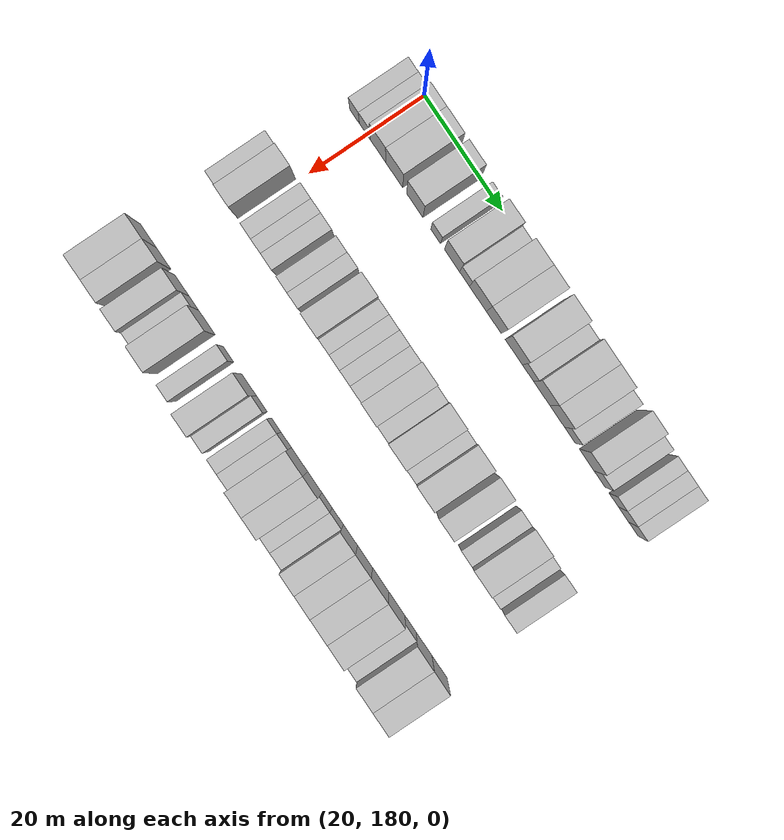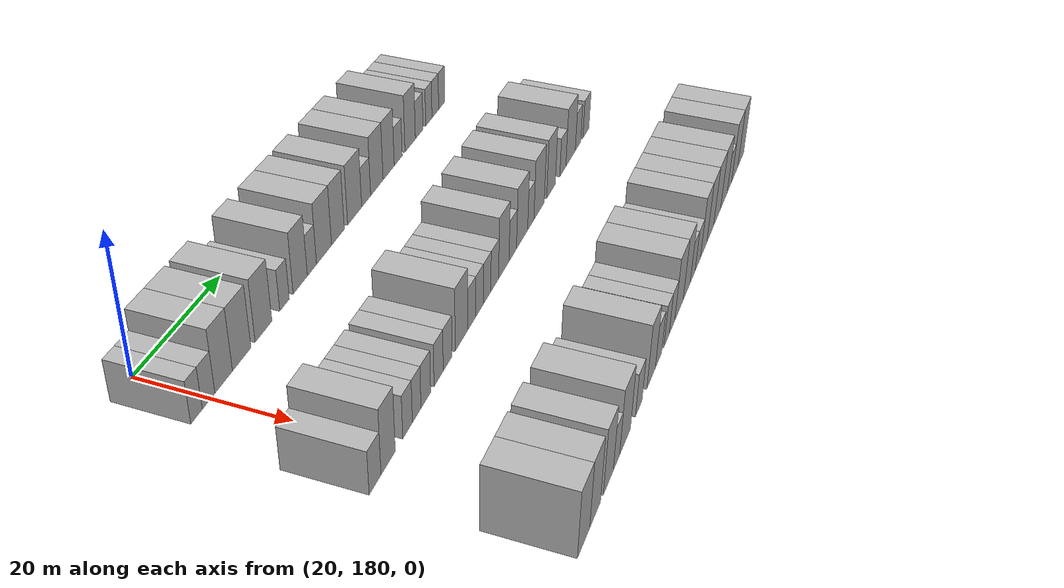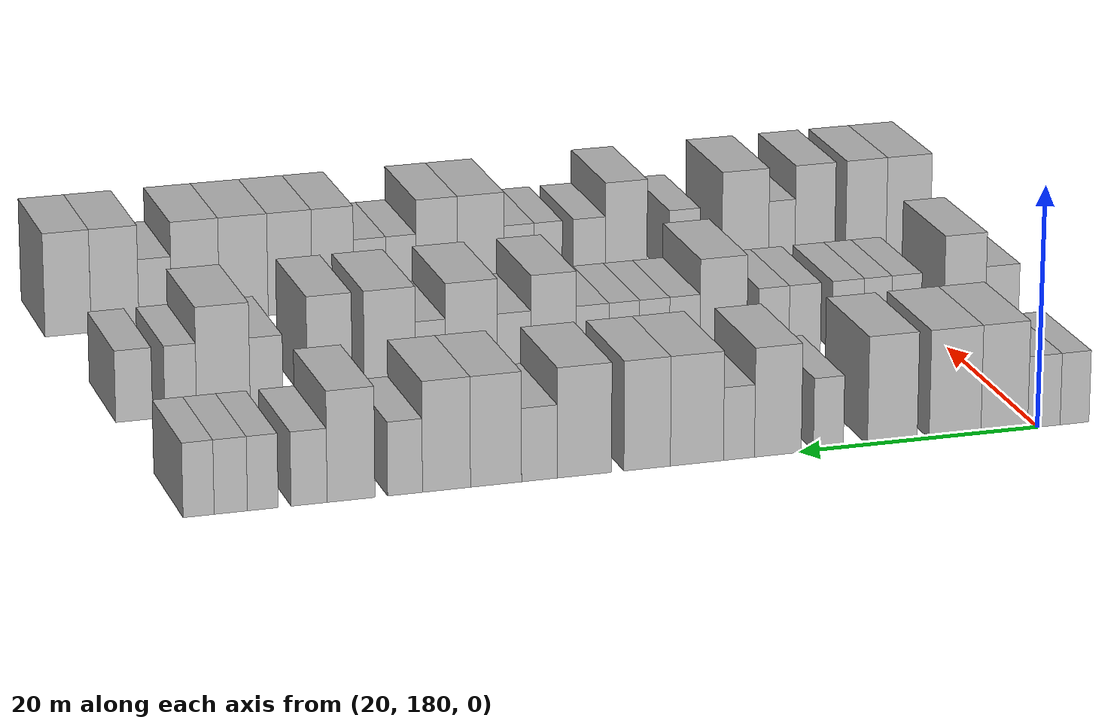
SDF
<sdf version="1.6">
 <world name="default">
  <model name="building_104">
   <static>1</static>
   <pose>25.0000 176.9085 0 0.000000 0.000000 0.000000</pose>
   <link name="link">
    <pose>0 0 3.00 0 0 0</pose>
    <collision name="collision"><geometry><box><size>10.0000 2.4607 6.0000</size></box></geometry></collision>
    <visual name="visual">
     <cast_shadows>0</cast_shadows>
     <geometry><box><size>10.0000 2.4607 6.0000</size></box></geometry>
     <material>
      <script>
       <uri>model://HANNAS_wall/materials/scripts</uri>
       <uri>model://HANNAS_wall/materials/textures</uri>
       <name>vrc/HANNAS_wall</name>
      </script>
     </material>
    </visual>
   </link>
  </model>
  <model name="building_105">
   <static>1</static>
   <pose>25.0000 179.5172 0 0.000000 0.000000 0.000000</pose>
   <link name="link">
    <pose>0 0 3.00 0 0 0</pose>
    <collision name="collision"><geometry><box><size>10.0000 2.7566 6.0000</size></box></geometry></collision>
    <visual name="visual">
     <cast_shadows>0</cast_shadows>
     <geometry><box><size>10.0000 2.7566 6.0000</size></box></geometry>
     <material>
      <script>
       <uri>model://HANNAS_wall/materials/scripts</uri>
       <uri>model://HANNAS_wall/materials/textures</uri>
       <name>vrc/HANNAS_wall</name>
      </script>
     </material>
    </visual>
   </link>
  </model>
  <model name="building_106">
   <static>1</static>
   <pose>25.0000 182.8722 0 0.000000 0.000000 0.000000</pose>
   <link name="link">
    <pose>0 0 4.50 0 0 0</pose>
    <collision name="collision"><geometry><box><size>10.0000 3.9534 9.0000</size></box></geometry></collision>
    <visual name="visual">
     <cast_shadows>0</cast_shadows>
     <geometry><box><size>10.0000 3.9534 9.0000</size></box></geometry>
     <material>
      <script>
       <uri>model://HANNAS_wall/materials/scripts</uri>
       <uri>model://HANNAS_wall/materials/textures</uri>
       <name>vrc/HANNAS_wall</name>
      </script>
     </material>
    </visual>
   </link>
  </model>
  <model name="building_107">
   <static>1</static>
   <pose>25.0000 187.0265 0 0.000000 0.000000 0.000000</pose>
   <link name="link">
    <pose>0 0 4.50 0 0 0</pose>
    <collision name="collision"><geometry><box><size>10.0000 4.3552 9.0000</size></box></geometry></collision>
    <visual name="visual">
     <cast_shadows>0</cast_shadows>
     <geometry><box><size>10.0000 4.3552 9.0000</size></box></geometry>
     <material>
      <script>
       <uri>model://HANNAS_wall/materials/scripts</uri>
       <uri>model://HANNAS_wall/materials/textures</uri>
       <name>vrc/HANNAS_wall</name>
      </script>
     </material>
    </visual>
   </link>
  </model>
  <model name="building_108">
   <static>1</static>
   <pose>25.0000 192.2827 0 0.000000 0.000000 0.000000</pose>
   <link name="link">
    <pose>0 0 4.50 0 0 0</pose>
    <collision name="collision"><geometry><box><size>10.0000 4.1572 9.0000</size></box></geometry></collision>
    <visual name="visual">
     <cast_shadows>0</cast_shadows>
     <geometry><box><size>10.0000 4.1572 9.0000</size></box></geometry>
     <material>
      <script>
       <uri>model://HANNAS_wall/materials/scripts</uri>
       <uri>model://HANNAS_wall/materials/textures</uri>
       <name>vrc/HANNAS_wall</name>
      </script>
     </material>
    </visual>
   </link>
  </model>
  <model name="building_109">
   <static>1</static>
   <pose>25.0000 197.6085 0 0.000000 0.000000 0.000000</pose>
   <link name="link">
    <pose>0 0 3.00 0 0 0</pose>
    <collision name="collision"><geometry><box><size>10.0000 2.4943 6.0000</size></box></geometry></collision>
    <visual name="visual">
     <cast_shadows>0</cast_shadows>
     <geometry><box><size>10.0000 2.4943 6.0000</size></box></geometry>
     <material>
      <script>
       <uri>model://HANNAS_wall/materials/scripts</uri>
       <uri>model://HANNAS_wall/materials/textures</uri>
       <name>vrc/HANNAS_wall</name>
      </script>
     </material>
    </visual>
   </link>
  </model>
  <model name="building_110">
   <static>1</static>
   <pose>25.0000 201.7870 0 0.000000 0.000000 0.000000</pose>
   <link name="link">
    <pose>0 0 4.50 0 0 0</pose>
    <collision name="collision"><geometry><box><size>10.0000 3.8627 9.0000</size></box></geometry></collision>
    <visual name="visual">
     <cast_shadows>0</cast_shadows>
     <geometry><box><size>10.0000 3.8627 9.0000</size></box></geometry>
     <material>
      <script>
       <uri>model://HANNAS_wall/materials/scripts</uri>
       <uri>model://HANNAS_wall/materials/textures</uri>
       <name>vrc/HANNAS_wall</name>
      </script>
     </material>
    </visual>
   </link>
  </model>
  <model name="building_111">
   <static>1</static>
   <pose>25.0000 204.9935 0 0.000000 0.000000 0.000000</pose>
   <link name="link">
    <pose>0 0 3.00 0 0 0</pose>
    <collision name="collision"><geometry><box><size>10.0000 2.5503 6.0000</size></box></geometry></collision>
    <visual name="visual">
     <cast_shadows>0</cast_shadows>
     <geometry><box><size>10.0000 2.5503 6.0000</size></box></geometry>
     <material>
      <script>
       <uri>model://HANNAS_wall/materials/scripts</uri>
       <uri>model://HANNAS_wall/materials/textures</uri>
       <name>vrc/HANNAS_wall</name>
      </script>
     </material>
    </visual>
   </link>
  </model>
  <model name="building_112">
   <static>1</static>
   <pose>25.0000 208.4336 0 0.000000 0.000000 0.000000</pose>
   <link name="link">
    <pose>0 0 4.50 0 0 0</pose>
    <collision name="collision"><geometry><box><size>10.0000 4.3299 9.0000</size></box></geometry></collision>
    <visual name="visual">
     <cast_shadows>0</cast_shadows>
     <geometry><box><size>10.0000 4.3299 9.0000</size></box></geometry>
     <material>
      <script>
       <uri>model://HANNAS_wall/materials/scripts</uri>
       <uri>model://HANNAS_wall/materials/textures</uri>
       <name>vrc/HANNAS_wall</name>
      </script>
     </material>
    </visual>
   </link>
  </model>
  <model name="building_113">
   <static>1</static>
   <pose>25.0000 212.4902 0 0.000000 0.000000 0.000000</pose>
   <link name="link">
    <pose>0 0 4.50 0 0 0</pose>
    <collision name="collision"><geometry><box><size>10.0000 3.7833 9.0000</size></box></geometry></collision>
    <visual name="visual">
     <cast_shadows>0</cast_shadows>
     <geometry><box><size>10.0000 3.7833 9.0000</size></box></geometry>
     <material>
      <script>
       <uri>model://HANNAS_wall/materials/scripts</uri>
       <uri>model://HANNAS_wall/materials/textures</uri>
       <name>vrc/HANNAS_wall</name>
      </script>
     </material>
    </visual>
   </link>
  </model>
  <model name="building_114">
   <static>1</static>
   <pose>25.0000 217.5738 0 0.000000 0.000000 0.000000</pose>
   <link name="link">
    <pose>0 0 4.50 0 0 0</pose>
    <collision name="collision"><geometry><box><size>10.0000 4.3839 9.0000</size></box></geometry></collision>
    <visual name="visual">
     <cast_shadows>0</cast_shadows>
     <geometry><box><size>10.0000 4.3839 9.0000</size></box></geometry>
     <material>
      <script>
       <uri>model://HANNAS_wall/materials/scripts</uri>
       <uri>model://HANNAS_wall/materials/textures</uri>
       <name>vrc/HANNAS_wall</name>
      </script>
     </material>
    </visual>
   </link>
  </model>
  <model name="building_115">
   <static>1</static>
   <pose>25.0000 221.1995 0 0.000000 0.000000 0.000000</pose>
   <link name="link">
    <pose>0 0 3.00 0 0 0</pose>
    <collision name="collision"><geometry><box><size>10.0000 2.8673 6.0000</size></box></geometry></collision>
    <visual name="visual">
     <cast_shadows>0</cast_shadows>
     <geometry><box><size>10.0000 2.8673 6.0000</size></box></geometry>
     <material>
      <script>
       <uri>model://HANNAS_wall/materials/scripts</uri>
       <uri>model://HANNAS_wall/materials/textures</uri>
       <name>vrc/HANNAS_wall</name>
      </script>
     </material>
    </visual>
   </link>
  </model>
  <model name="building_116">
   <static>1</static>
   <pose>25.0000 224.6780 0 0.000000 0.000000 0.000000</pose>
   <link name="link">
    <pose>0 0 4.50 0 0 0</pose>
    <collision name="collision"><geometry><box><size>10.0000 4.0896 9.0000</size></box></geometry></collision>
    <visual name="visual">
     <cast_shadows>0</cast_shadows>
     <geometry><box><size>10.0000 4.0896 9.0000</size></box></geometry>
     <material>
      <script>
       <uri>model://HANNAS_wall/materials/scripts</uri>
       <uri>model://HANNAS_wall/materials/textures</uri>
       <name>vrc/HANNAS_wall</name>
      </script>
     </material>
    </visual>
   </link>
  </model>
  <model name="building_117">
   <static>1</static>
   <pose>25.0000 228.6338 0 0.000000 0.000000 0.000000</pose>
   <link name="link">
    <pose>0 0 4.50 0 0 0</pose>
    <collision name="collision"><geometry><box><size>10.0000 3.8220 9.0000</size></box></geometry></collision>
    <visual name="visual">
     <cast_shadows>0</cast_shadows>
     <geometry><box><size>10.0000 3.8220 9.0000</size></box></geometry>
     <material>
      <script>
       <uri>model://HANNAS_wall/materials/scripts</uri>
       <uri>model://HANNAS_wall/materials/textures</uri>
       <name>vrc/HANNAS_wall</name>
      </script>
     </material>
    </visual>
   </link>
  </model>
  <model name="building_118">
   <static>1</static>
   <pose>25.0000 231.9247 0 0.000000 0.000000 0.000000</pose>
   <link name="link">
    <pose>0 0 3.00 0 0 0</pose>
    <collision name="collision"><geometry><box><size>10.0000 2.7598 6.0000</size></box></geometry></collision>
    <visual name="visual">
     <cast_shadows>0</cast_shadows>
     <geometry><box><size>10.0000 2.7598 6.0000</size></box></geometry>
     <material>
      <script>
       <uri>model://HANNAS_wall/materials/scripts</uri>
       <uri>model://HANNAS_wall/materials/textures</uri>
       <name>vrc/HANNAS_wall</name>
      </script>
     </material>
    </visual>
   </link>
  </model>
  <model name="building_119">
   <static>1</static>
   <pose>25.0000 236.1870 0 0.000000 0.000000 0.000000</pose>
   <link name="link">
    <pose>0 0 4.50 0 0 0</pose>
    <collision name="collision"><geometry><box><size>10.0000 3.7647 9.0000</size></box></geometry></collision>
    <visual name="visual">
     <cast_shadows>0</cast_shadows>
     <geometry><box><size>10.0000 3.7647 9.0000</size></box></geometry>
     <material>
      <script>
       <uri>model://HANNAS_wall/materials/scripts</uri>
       <uri>model://HANNAS_wall/materials/textures</uri>
       <name>vrc/HANNAS_wall</name>
      </script>
     </material>
    </visual>
   </link>
  </model>
  <model name="building_120">
   <static>1</static>
   <pose>25.0000 239.4848 0 0.000000 0.000000 0.000000</pose>
   <link name="link">
    <pose>0 0 3.00 0 0 0</pose>
    <collision name="collision"><geometry><box><size>10.0000 2.8310 6.0000</size></box></geometry></collision>
    <visual name="visual">
     <cast_shadows>0</cast_shadows>
     <geometry><box><size>10.0000 2.8310 6.0000</size></box></geometry>
     <material>
      <script>
       <uri>model://HANNAS_wall/materials/scripts</uri>
       <uri>model://HANNAS_wall/materials/textures</uri>
       <name>vrc/HANNAS_wall</name>
      </script>
     </material>
    </visual>
   </link>
  </model>
  <model name="building_121">
   <static>1</static>
   <pose>25.0000 243.1018 0 0.000000 0.000000 0.000000</pose>
   <link name="link">
    <pose>0 0 3.00 0 0 0</pose>
    <collision name="collision"><geometry><box><size>10.0000 2.4029 6.0000</size></box></geometry></collision>
    <visual name="visual">
     <cast_shadows>0</cast_shadows>
     <geometry><box><size>10.0000 2.4029 6.0000</size></box></geometry>
     <material>
      <script>
       <uri>model://HANNAS_wall/materials/scripts</uri>
       <uri>model://HANNAS_wall/materials/textures</uri>
       <name>vrc/HANNAS_wall</name>
      </script>
     </material>
    </visual>
   </link>
  </model>
  <model name="building_122">
   <static>1</static>
   <pose>25.0000 245.5974 0 0.000000 0.000000 0.000000</pose>
   <link name="link">
    <pose>0 0 3.00 0 0 0</pose>
    <collision name="collision"><geometry><box><size>10.0000 2.5884 6.0000</size></box></geometry></collision>
    <visual name="visual">
     <cast_shadows>0</cast_shadows>
     <geometry><box><size>10.0000 2.5884 6.0000</size></box></geometry>
     <material>
      <script>
       <uri>model://HANNAS_wall/materials/scripts</uri>
       <uri>model://HANNAS_wall/materials/textures</uri>
       <name>vrc/HANNAS_wall</name>
      </script>
     </material>
    </visual>
   </link>
  </model>
  <model name="building_123">
   <static>1</static>
   <pose>25.0000 248.0993 0 0.000000 0.000000 0.000000</pose>
   <link name="link">
    <pose>0 0 3.00 0 0 0</pose>
    <collision name="collision"><geometry><box><size>10.0000 2.4154 6.0000</size></box></geometry></collision>
    <visual name="visual">
     <cast_shadows>0</cast_shadows>
     <geometry><box><size>10.0000 2.4154 6.0000</size></box></geometry>
     <material>
      <script>
       <uri>model://HANNAS_wall/materials/scripts</uri>
       <uri>model://HANNAS_wall/materials/textures</uri>
       <name>vrc/HANNAS_wall</name>
      </script>
     </material>
    </visual>
   </link>
  </model>
  <model name="building_224">
   <static>1</static>
   <pose>47.0000 174.4738 0 0.000000 0.000000 0.000000</pose>
   <link name="link">
    <pose>0 0 3.00 0 0 0</pose>
    <collision name="collision"><geometry><box><size>10.0000 2.9731 6.0000</size></box></geometry></collision>
    <visual name="visual">
     <cast_shadows>0</cast_shadows>
     <geometry><box><size>10.0000 2.9731 6.0000</size></box></geometry>
     <material>
      <script>
       <uri>model://HANNAS_wall/materials/scripts</uri>
       <uri>model://HANNAS_wall/materials/textures</uri>
       <name>vrc/HANNAS_wall</name>
      </script>
     </material>
    </visual>
   </link>
  </model>
  <model name="building_225">
   <static>1</static>
   <pose>47.0000 177.7997 0 0.000000 0.000000 0.000000</pose>
   <link name="link">
    <pose>0 0 4.50 0 0 0</pose>
    <collision name="collision"><geometry><box><size>10.0000 3.6788 9.0000</size></box></geometry></collision>
    <visual name="visual">
     <cast_shadows>0</cast_shadows>
     <geometry><box><size>10.0000 3.6788 9.0000</size></box></geometry>
     <material>
      <script>
       <uri>model://HANNAS_wall/materials/scripts</uri>
       <uri>model://HANNAS_wall/materials/textures</uri>
       <name>vrc/HANNAS_wall</name>
      </script>
     </material>
    </visual>
   </link>
  </model>
  <model name="building_226">
   <static>1</static>
   <pose>47.0000 182.9513 0 0.000000 0.000000 0.000000</pose>
   <link name="link">
    <pose>0 0 3.00 0 0 0</pose>
    <collision name="collision"><geometry><box><size>10.0000 2.6244 6.0000</size></box></geometry></collision>
    <visual name="visual">
     <cast_shadows>0</cast_shadows>
     <geometry><box><size>10.0000 2.6244 6.0000</size></box></geometry>
     <material>
      <script>
       <uri>model://HANNAS_wall/materials/scripts</uri>
       <uri>model://HANNAS_wall/materials/textures</uri>
       <name>vrc/HANNAS_wall</name>
      </script>
     </material>
    </visual>
   </link>
  </model>
  <model name="building_227">
   <static>1</static>
   <pose>47.0000 185.4690 0 0.000000 0.000000 0.000000</pose>
   <link name="link">
    <pose>0 0 3.00 0 0 0</pose>
    <collision name="collision"><geometry><box><size>10.0000 2.4110 6.0000</size></box></geometry></collision>
    <visual name="visual">
     <cast_shadows>0</cast_shadows>
     <geometry><box><size>10.0000 2.4110 6.0000</size></box></geometry>
     <material>
      <script>
       <uri>model://HANNAS_wall/materials/scripts</uri>
       <uri>model://HANNAS_wall/materials/textures</uri>
       <name>vrc/HANNAS_wall</name>
      </script>
     </material>
    </visual>
   </link>
  </model>
  <model name="building_228">
   <static>1</static>
   <pose>47.0000 188.0600 0 0.000000 0.000000 0.000000</pose>
   <link name="link">
    <pose>0 0 3.00 0 0 0</pose>
    <collision name="collision"><geometry><box><size>10.0000 2.7710 6.0000</size></box></geometry></collision>
    <visual name="visual">
     <cast_shadows>0</cast_shadows>
     <geometry><box><size>10.0000 2.7710 6.0000</size></box></geometry>
     <material>
      <script>
       <uri>model://HANNAS_wall/materials/scripts</uri>
       <uri>model://HANNAS_wall/materials/textures</uri>
       <name>vrc/HANNAS_wall</name>
      </script>
     </material>
    </visual>
   </link>
  </model>
  <model name="building_229">
   <static>1</static>
   <pose>47.0000 191.8187 0 0.000000 0.000000 0.000000</pose>
   <link name="link">
    <pose>0 0 3.00 0 0 0</pose>
    <collision name="collision"><geometry><box><size>10.0000 2.7464 6.0000</size></box></geometry></collision>
    <visual name="visual">
     <cast_shadows>0</cast_shadows>
     <geometry><box><size>10.0000 2.7464 6.0000</size></box></geometry>
     <material>
      <script>
       <uri>model://HANNAS_wall/materials/scripts</uri>
       <uri>model://HANNAS_wall/materials/textures</uri>
       <name>vrc/HANNAS_wall</name>
      </script>
     </material>
    </visual>
   </link>
  </model>
  <model name="building_230">
   <static>1</static>
   <pose>47.0000 194.5228 0 0.000000 0.000000 0.000000</pose>
   <link name="link">
    <pose>0 0 3.00 0 0 0</pose>
    <collision name="collision"><geometry><box><size>10.0000 2.6618 6.0000</size></box></geometry></collision>
    <visual name="visual">
     <cast_shadows>0</cast_shadows>
     <geometry><box><size>10.0000 2.6618 6.0000</size></box></geometry>
     <material>
      <script>
       <uri>model://HANNAS_wall/materials/scripts</uri>
       <uri>model://HANNAS_wall/materials/textures</uri>
       <name>vrc/HANNAS_wall</name>
      </script>
     </material>
    </visual>
   </link>
  </model>
  <model name="building_231">
   <static>1</static>
   <pose>47.0000 198.8809 0 0.000000 0.000000 0.000000</pose>
   <link name="link">
    <pose>0 0 4.50 0 0 0</pose>
    <collision name="collision"><geometry><box><size>10.0000 4.0543 9.0000</size></box></geometry></collision>
    <visual name="visual">
     <cast_shadows>0</cast_shadows>
     <geometry><box><size>10.0000 4.0543 9.0000</size></box></geometry>
     <material>
      <script>
       <uri>model://HANNAS_wall/materials/scripts</uri>
       <uri>model://HANNAS_wall/materials/textures</uri>
       <name>vrc/HANNAS_wall</name>
      </script>
     </material>
    </visual>
   </link>
  </model>
  <model name="building_232">
   <static>1</static>
   <pose>47.0000 202.2136 0 0.000000 0.000000 0.000000</pose>
   <link name="link">
    <pose>0 0 3.00 0 0 0</pose>
    <collision name="collision"><geometry><box><size>10.0000 2.6112 6.0000</size></box></geometry></collision>
    <visual name="visual">
     <cast_shadows>0</cast_shadows>
     <geometry><box><size>10.0000 2.6112 6.0000</size></box></geometry>
     <material>
      <script>
       <uri>model://HANNAS_wall/materials/scripts</uri>
       <uri>model://HANNAS_wall/materials/textures</uri>
       <name>vrc/HANNAS_wall</name>
      </script>
     </material>
    </visual>
   </link>
  </model>
  <model name="building_233">
   <static>1</static>
   <pose>47.0000 204.8076 0 0.000000 0.000000 0.000000</pose>
   <link name="link">
    <pose>0 0 3.00 0 0 0</pose>
    <collision name="collision"><geometry><box><size>10.0000 2.5768 6.0000</size></box></geometry></collision>
    <visual name="visual">
     <cast_shadows>0</cast_shadows>
     <geometry><box><size>10.0000 2.5768 6.0000</size></box></geometry>
     <material>
      <script>
       <uri>model://HANNAS_wall/materials/scripts</uri>
       <uri>model://HANNAS_wall/materials/textures</uri>
       <name>vrc/HANNAS_wall</name>
      </script>
     </material>
    </visual>
   </link>
  </model>
  <model name="building_234">
   <static>1</static>
   <pose>47.0000 207.3942 0 0.000000 0.000000 0.000000</pose>
   <link name="link">
    <pose>0 0 3.00 0 0 0</pose>
    <collision name="collision"><geometry><box><size>10.0000 2.5965 6.0000</size></box></geometry></collision>
    <visual name="visual">
     <cast_shadows>0</cast_shadows>
     <geometry><box><size>10.0000 2.5965 6.0000</size></box></geometry>
     <material>
      <script>
       <uri>model://HANNAS_wall/materials/scripts</uri>
       <uri>model://HANNAS_wall/materials/textures</uri>
       <name>vrc/HANNAS_wall</name>
      </script>
     </material>
    </visual>
   </link>
  </model>
  <model name="building_235">
   <static>1</static>
   <pose>47.0000 210.0883 0 0.000000 0.000000 0.000000</pose>
   <link name="link">
    <pose>0 0 3.00 0 0 0</pose>
    <collision name="collision"><geometry><box><size>10.0000 2.7918 6.0000</size></box></geometry></collision>
    <visual name="visual">
     <cast_shadows>0</cast_shadows>
     <geometry><box><size>10.0000 2.7918 6.0000</size></box></geometry>
     <material>
      <script>
       <uri>model://HANNAS_wall/materials/scripts</uri>
       <uri>model://HANNAS_wall/materials/textures</uri>
       <name>vrc/HANNAS_wall</name>
      </script>
     </material>
    </visual>
   </link>
  </model>
  <model name="building_236">
   <static>1</static>
   <pose>47.0000 213.4034 0 0.000000 0.000000 0.000000</pose>
   <link name="link">
    <pose>0 0 4.50 0 0 0</pose>
    <collision name="collision"><geometry><box><size>10.0000 3.8384 9.0000</size></box></geometry></collision>
    <visual name="visual">
     <cast_shadows>0</cast_shadows>
     <geometry><box><size>10.0000 3.8384 9.0000</size></box></geometry>
     <material>
      <script>
       <uri>model://HANNAS_wall/materials/scripts</uri>
       <uri>model://HANNAS_wall/materials/textures</uri>
       <name>vrc/HANNAS_wall</name>
      </script>
     </material>
    </visual>
   </link>
  </model>
  <model name="building_237">
   <static>1</static>
   <pose>47.0000 216.7328 0 0.000000 0.000000 0.000000</pose>
   <link name="link">
    <pose>0 0 3.00 0 0 0</pose>
    <collision name="collision"><geometry><box><size>10.0000 2.8204 6.0000</size></box></geometry></collision>
    <visual name="visual">
     <cast_shadows>0</cast_shadows>
     <geometry><box><size>10.0000 2.8204 6.0000</size></box></geometry>
     <material>
      <script>
       <uri>model://HANNAS_wall/materials/scripts</uri>
       <uri>model://HANNAS_wall/materials/textures</uri>
       <name>vrc/HANNAS_wall</name>
      </script>
     </material>
    </visual>
   </link>
  </model>
  <model name="building_238">
   <static>1</static>
   <pose>47.0000 220.3203 0 0.000000 0.000000 0.000000</pose>
   <link name="link">
    <pose>0 0 4.50 0 0 0</pose>
    <collision name="collision"><geometry><box><size>10.0000 4.3547 9.0000</size></box></geometry></collision>
    <visual name="visual">
     <cast_shadows>0</cast_shadows>
     <geometry><box><size>10.0000 4.3547 9.0000</size></box></geometry>
     <material>
      <script>
       <uri>model://HANNAS_wall/materials/scripts</uri>
       <uri>model://HANNAS_wall/materials/textures</uri>
       <name>vrc/HANNAS_wall</name>
      </script>
     </material>
    </visual>
   </link>
  </model>
  <model name="building_239">
   <static>1</static>
   <pose>47.0000 223.7535 0 0.000000 0.000000 0.000000</pose>
   <link name="link">
    <pose>0 0 3.00 0 0 0</pose>
    <collision name="collision"><geometry><box><size>10.0000 2.5117 6.0000</size></box></geometry></collision>
    <visual name="visual">
     <cast_shadows>0</cast_shadows>
     <geometry><box><size>10.0000 2.5117 6.0000</size></box></geometry>
     <material>
      <script>
       <uri>model://HANNAS_wall/materials/scripts</uri>
       <uri>model://HANNAS_wall/materials/textures</uri>
       <name>vrc/HANNAS_wall</name>
      </script>
     </material>
    </visual>
   </link>
  </model>
  <model name="building_240">
   <static>1</static>
   <pose>47.0000 227.1483 0 0.000000 0.000000 0.000000</pose>
   <link name="link">
    <pose>0 0 4.50 0 0 0</pose>
    <collision name="collision"><geometry><box><size>10.0000 4.2778 9.0000</size></box></geometry></collision>
    <visual name="visual">
     <cast_shadows>0</cast_shadows>
     <geometry><box><size>10.0000 4.2778 9.0000</size></box></geometry>
     <material>
      <script>
       <uri>model://HANNAS_wall/materials/scripts</uri>
       <uri>model://HANNAS_wall/materials/textures</uri>
       <name>vrc/HANNAS_wall</name>
      </script>
     </material>
    </visual>
   </link>
  </model>
  <model name="building_241">
   <static>1</static>
   <pose>47.0000 232.1474 0 0.000000 0.000000 0.000000</pose>
   <link name="link">
    <pose>0 0 4.50 0 0 0</pose>
    <collision name="collision"><geometry><box><size>10.0000 3.7203 9.0000</size></box></geometry></collision>
    <visual name="visual">
     <cast_shadows>0</cast_shadows>
     <geometry><box><size>10.0000 3.7203 9.0000</size></box></geometry>
     <material>
      <script>
       <uri>model://HANNAS_wall/materials/scripts</uri>
       <uri>model://HANNAS_wall/materials/textures</uri>
       <name>vrc/HANNAS_wall</name>
      </script>
     </material>
    </visual>
   </link>
  </model>
  <model name="building_242">
   <static>1</static>
   <pose>47.0000 237.3635 0 0.000000 0.000000 0.000000</pose>
   <link name="link">
    <pose>0 0 3.00 0 0 0</pose>
    <collision name="collision"><geometry><box><size>10.0000 2.7119 6.0000</size></box></geometry></collision>
    <visual name="visual">
     <cast_shadows>0</cast_shadows>
     <geometry><box><size>10.0000 2.7119 6.0000</size></box></geometry>
     <material>
      <script>
       <uri>model://HANNAS_wall/materials/scripts</uri>
       <uri>model://HANNAS_wall/materials/textures</uri>
       <name>vrc/HANNAS_wall</name>
      </script>
     </material>
    </visual>
   </link>
  </model>
  <model name="building_243">
   <static>1</static>
   <pose>47.0000 240.9088 0 0.000000 0.000000 0.000000</pose>
   <link name="link">
    <pose>0 0 4.50 0 0 0</pose>
    <collision name="collision"><geometry><box><size>10.0000 4.3787 9.0000</size></box></geometry></collision>
    <visual name="visual">
     <cast_shadows>0</cast_shadows>
     <geometry><box><size>10.0000 4.3787 9.0000</size></box></geometry>
     <material>
      <script>
       <uri>model://HANNAS_wall/materials/scripts</uri>
       <uri>model://HANNAS_wall/materials/textures</uri>
       <name>vrc/HANNAS_wall</name>
      </script>
     </material>
    </visual>
   </link>
  </model>
  <model name="building_244">
   <static>1</static>
   <pose>47.0000 244.3959 0 0.000000 0.000000 0.000000</pose>
   <link name="link">
    <pose>0 0 3.00 0 0 0</pose>
    <collision name="collision"><geometry><box><size>10.0000 2.5955 6.0000</size></box></geometry></collision>
    <visual name="visual">
     <cast_shadows>0</cast_shadows>
     <geometry><box><size>10.0000 2.5955 6.0000</size></box></geometry>
     <material>
      <script>
       <uri>model://HANNAS_wall/materials/scripts</uri>
       <uri>model://HANNAS_wall/materials/textures</uri>
       <name>vrc/HANNAS_wall</name>
      </script>
     </material>
    </visual>
   </link>
  </model>
  <model name="building_245">
   <static>1</static>
   <pose>47.0000 248.1898 0 0.000000 0.000000 0.000000</pose>
   <link name="link">
    <pose>0 0 3.00 0 0 0</pose>
    <collision name="collision"><geometry><box><size>10.0000 2.9923 6.0000</size></box></geometry></collision>
    <visual name="visual">
     <cast_shadows>0</cast_shadows>
     <geometry><box><size>10.0000 2.9923 6.0000</size></box></geometry>
     <material>
      <script>
       <uri>model://HANNAS_wall/materials/scripts</uri>
       <uri>model://HANNAS_wall/materials/textures</uri>
       <name>vrc/HANNAS_wall</name>
      </script>
     </material>
    </visual>
   </link>
  </model>
  <model name="building_358">
   <static>1</static>
   <pose>69.0000 174.5330 0 0.000000 0.000000 0.000000</pose>
   <link name="link">
    <pose>0 0 4.50 0 0 0</pose>
    <collision name="collision"><geometry><box><size>10.0000 4.1039 9.0000</size></box></geometry></collision>
    <visual name="visual">
     <cast_shadows>0</cast_shadows>
     <geometry><box><size>10.0000 4.1039 9.0000</size></box></geometry>
     <material>
      <script>
       <uri>model://HANNAS_wall/materials/scripts</uri>
       <uri>model://HANNAS_wall/materials/textures</uri>
       <name>vrc/HANNAS_wall</name>
      </script>
     </material>
    </visual>
   </link>
  </model>
  <model name="building_359">
   <static>1</static>
   <pose>69.0000 178.4512 0 0.000000 0.000000 0.000000</pose>
   <link name="link">
    <pose>0 0 4.50 0 0 0</pose>
    <collision name="collision"><geometry><box><size>10.0000 3.7326 9.0000</size></box></geometry></collision>
    <visual name="visual">
     <cast_shadows>0</cast_shadows>
     <geometry><box><size>10.0000 3.7326 9.0000</size></box></geometry>
     <material>
      <script>
       <uri>model://HANNAS_wall/materials/scripts</uri>
       <uri>model://HANNAS_wall/materials/textures</uri>
       <name>vrc/HANNAS_wall</name>
      </script>
     </material>
    </visual>
   </link>
  </model>
  <model name="building_360">
   <static>1</static>
   <pose>69.0000 183.1440 0 0.000000 0.000000 0.000000</pose>
   <link name="link">
    <pose>0 0 4.50 0 0 0</pose>
    <collision name="collision"><geometry><box><size>10.0000 3.6530 9.0000</size></box></geometry></collision>
    <visual name="visual">
     <cast_shadows>0</cast_shadows>
     <geometry><box><size>10.0000 3.6530 9.0000</size></box></geometry>
     <material>
      <script>
       <uri>model://HANNAS_wall/materials/scripts</uri>
       <uri>model://HANNAS_wall/materials/textures</uri>
       <name>vrc/HANNAS_wall</name>
      </script>
     </material>
    </visual>
   </link>
  </model>
  <model name="building_361">
   <static>1</static>
   <pose>69.0000 186.1732 0 0.000000 0.000000 0.000000</pose>
   <link name="link">
    <pose>0 0 3.00 0 0 0</pose>
    <collision name="collision"><geometry><box><size>10.0000 2.4054 6.0000</size></box></geometry></collision>
    <visual name="visual">
     <cast_shadows>0</cast_shadows>
     <geometry><box><size>10.0000 2.4054 6.0000</size></box></geometry>
     <material>
      <script>
       <uri>model://HANNAS_wall/materials/scripts</uri>
       <uri>model://HANNAS_wall/materials/textures</uri>
       <name>vrc/HANNAS_wall</name>
      </script>
     </material>
    </visual>
   </link>
  </model>
  <model name="building_362">
   <static>1</static>
   <pose>69.0000 189.4989 0 0.000000 0.000000 0.000000</pose>
   <link name="link">
    <pose>0 0 4.50 0 0 0</pose>
    <collision name="collision"><geometry><box><size>10.0000 4.2461 9.0000</size></box></geometry></collision>
    <visual name="visual">
     <cast_shadows>0</cast_shadows>
     <geometry><box><size>10.0000 4.2461 9.0000</size></box></geometry>
     <material>
      <script>
       <uri>model://HANNAS_wall/materials/scripts</uri>
       <uri>model://HANNAS_wall/materials/textures</uri>
       <name>vrc/HANNAS_wall</name>
      </script>
     </material>
    </visual>
   </link>
  </model>
  <model name="building_363">
   <static>1</static>
   <pose>69.0000 195.0050 0 0.000000 0.000000 0.000000</pose>
   <link name="link">
    <pose>0 0 3.00 0 0 0</pose>
    <collision name="collision"><geometry><box><size>10.0000 2.7660 6.0000</size></box></geometry></collision>
    <visual name="visual">
     <cast_shadows>0</cast_shadows>
     <geometry><box><size>10.0000 2.7660 6.0000</size></box></geometry>
     <material>
      <script>
       <uri>model://HANNAS_wall/materials/scripts</uri>
       <uri>model://HANNAS_wall/materials/textures</uri>
       <name>vrc/HANNAS_wall</name>
      </script>
     </material>
    </visual>
   </link>
  </model>
  <model name="building_364">
   <static>1</static>
   <pose>69.0000 200.2555 0 0.000000 0.000000 0.000000</pose>
   <link name="link">
    <pose>0 0 4.50 0 0 0</pose>
    <collision name="collision"><geometry><box><size>10.0000 3.7351 9.0000</size></box></geometry></collision>
    <visual name="visual">
     <cast_shadows>0</cast_shadows>
     <geometry><box><size>10.0000 3.7351 9.0000</size></box></geometry>
     <material>
      <script>
       <uri>model://HANNAS_wall/materials/scripts</uri>
       <uri>model://HANNAS_wall/materials/textures</uri>
       <name>vrc/HANNAS_wall</name>
      </script>
     </material>
    </visual>
   </link>
  </model>
  <model name="building_365">
   <static>1</static>
   <pose>69.0000 203.5505 0 0.000000 0.000000 0.000000</pose>
   <link name="link">
    <pose>0 0 3.00 0 0 0</pose>
    <collision name="collision"><geometry><box><size>10.0000 2.8547 6.0000</size></box></geometry></collision>
    <visual name="visual">
     <cast_shadows>0</cast_shadows>
     <geometry><box><size>10.0000 2.8547 6.0000</size></box></geometry>
     <material>
      <script>
       <uri>model://HANNAS_wall/materials/scripts</uri>
       <uri>model://HANNAS_wall/materials/textures</uri>
       <name>vrc/HANNAS_wall</name>
      </script>
     </material>
    </visual>
   </link>
  </model>
  <model name="building_366">
   <static>1</static>
   <pose>69.0000 207.2175 0 0.000000 0.000000 0.000000</pose>
   <link name="link">
    <pose>0 0 3.00 0 0 0</pose>
    <collision name="collision"><geometry><box><size>10.0000 2.4794 6.0000</size></box></geometry></collision>
    <visual name="visual">
     <cast_shadows>0</cast_shadows>
     <geometry><box><size>10.0000 2.4794 6.0000</size></box></geometry>
     <material>
      <script>
       <uri>model://HANNAS_wall/materials/scripts</uri>
       <uri>model://HANNAS_wall/materials/textures</uri>
       <name>vrc/HANNAS_wall</name>
      </script>
     </material>
    </visual>
   </link>
  </model>
  <model name="building_367">
   <static>1</static>
   <pose>69.0000 209.7926 0 0.000000 0.000000 0.000000</pose>
   <link name="link">
    <pose>0 0 3.00 0 0 0</pose>
    <collision name="collision"><geometry><box><size>10.0000 2.6706 6.0000</size></box></geometry></collision>
    <visual name="visual">
     <cast_shadows>0</cast_shadows>
     <geometry><box><size>10.0000 2.6706 6.0000</size></box></geometry>
     <material>
      <script>
       <uri>model://HANNAS_wall/materials/scripts</uri>
       <uri>model://HANNAS_wall/materials/textures</uri>
       <name>vrc/HANNAS_wall</name>
      </script>
     </material>
    </visual>
   </link>
  </model>
  <model name="building_368">
   <static>1</static>
   <pose>69.0000 213.1956 0 0.000000 0.000000 0.000000</pose>
   <link name="link">
    <pose>0 0 4.50 0 0 0</pose>
    <collision name="collision"><geometry><box><size>10.0000 4.1354 9.0000</size></box></geometry></collision>
    <visual name="visual">
     <cast_shadows>0</cast_shadows>
     <geometry><box><size>10.0000 4.1354 9.0000</size></box></geometry>
     <material>
      <script>
       <uri>model://HANNAS_wall/materials/scripts</uri>
       <uri>model://HANNAS_wall/materials/textures</uri>
       <name>vrc/HANNAS_wall</name>
      </script>
     </material>
    </visual>
   </link>
  </model>
  <model name="building_369">
   <static>1</static>
   <pose>69.0000 217.0778 0 0.000000 0.000000 0.000000</pose>
   <link name="link">
    <pose>0 0 4.50 0 0 0</pose>
    <collision name="collision"><geometry><box><size>10.0000 3.6290 9.0000</size></box></geometry></collision>
    <visual name="visual">
     <cast_shadows>0</cast_shadows>
     <geometry><box><size>10.0000 3.6290 9.0000</size></box></geometry>
     <material>
      <script>
       <uri>model://HANNAS_wall/materials/scripts</uri>
       <uri>model://HANNAS_wall/materials/textures</uri>
       <name>vrc/HANNAS_wall</name>
      </script>
     </material>
    </visual>
   </link>
  </model>
  <model name="building_370">
   <static>1</static>
   <pose>69.0000 220.2101 0 0.000000 0.000000 0.000000</pose>
   <link name="link">
    <pose>0 0 3.00 0 0 0</pose>
    <collision name="collision"><geometry><box><size>10.0000 2.6356 6.0000</size></box></geometry></collision>
    <visual name="visual">
     <cast_shadows>0</cast_shadows>
     <geometry><box><size>10.0000 2.6356 6.0000</size></box></geometry>
     <material>
      <script>
       <uri>model://HANNAS_wall/materials/scripts</uri>
       <uri>model://HANNAS_wall/materials/textures</uri>
       <name>vrc/HANNAS_wall</name>
      </script>
     </material>
    </visual>
   </link>
  </model>
  <model name="building_371">
   <static>1</static>
   <pose>69.0000 222.9396 0 0.000000 0.000000 0.000000</pose>
   <link name="link">
    <pose>0 0 3.00 0 0 0</pose>
    <collision name="collision"><geometry><box><size>10.0000 2.8235 6.0000</size></box></geometry></collision>
    <visual name="visual">
     <cast_shadows>0</cast_shadows>
     <geometry><box><size>10.0000 2.8235 6.0000</size></box></geometry>
     <material>
      <script>
       <uri>model://HANNAS_wall/materials/scripts</uri>
       <uri>model://HANNAS_wall/materials/textures</uri>
       <name>vrc/HANNAS_wall</name>
      </script>
     </material>
    </visual>
   </link>
  </model>
  <model name="building_372">
   <static>1</static>
   <pose>69.0000 226.1653 0 0.000000 0.000000 0.000000</pose>
   <link name="link">
    <pose>0 0 4.50 0 0 0</pose>
    <collision name="collision"><geometry><box><size>10.0000 3.6278 9.0000</size></box></geometry></collision>
    <visual name="visual">
     <cast_shadows>0</cast_shadows>
     <geometry><box><size>10.0000 3.6278 9.0000</size></box></geometry>
     <material>
      <script>
       <uri>model://HANNAS_wall/materials/scripts</uri>
       <uri>model://HANNAS_wall/materials/textures</uri>
       <name>vrc/HANNAS_wall</name>
      </script>
     </material>
    </visual>
   </link>
  </model>
  <model name="building_373">
   <static>1</static>
   <pose>69.0000 229.8880 0 0.000000 0.000000 0.000000</pose>
   <link name="link">
    <pose>0 0 4.50 0 0 0</pose>
    <collision name="collision"><geometry><box><size>10.0000 3.8175 9.0000</size></box></geometry></collision>
    <visual name="visual">
     <cast_shadows>0</cast_shadows>
     <geometry><box><size>10.0000 3.8175 9.0000</size></box></geometry>
     <material>
      <script>
       <uri>model://HANNAS_wall/materials/scripts</uri>
       <uri>model://HANNAS_wall/materials/textures</uri>
       <name>vrc/HANNAS_wall</name>
      </script>
     </material>
    </visual>
   </link>
  </model>
  <model name="building_374">
   <static>1</static>
   <pose>69.0000 233.8939 0 0.000000 0.000000 0.000000</pose>
   <link name="link">
    <pose>0 0 4.50 0 0 0</pose>
    <collision name="collision"><geometry><box><size>10.0000 4.1944 9.0000</size></box></geometry></collision>
    <visual name="visual">
     <cast_shadows>0</cast_shadows>
     <geometry><box><size>10.0000 4.1944 9.0000</size></box></geometry>
     <material>
      <script>
       <uri>model://HANNAS_wall/materials/scripts</uri>
       <uri>model://HANNAS_wall/materials/textures</uri>
       <name>vrc/HANNAS_wall</name>
      </script>
     </material>
    </visual>
   </link>
  </model>
  <model name="building_375">
   <static>1</static>
   <pose>69.0000 238.0290 0 0.000000 0.000000 0.000000</pose>
   <link name="link">
    <pose>0 0 4.50 0 0 0</pose>
    <collision name="collision"><geometry><box><size>10.0000 4.0758 9.0000</size></box></geometry></collision>
    <visual name="visual">
     <cast_shadows>0</cast_shadows>
     <geometry><box><size>10.0000 4.0758 9.0000</size></box></geometry>
     <material>
      <script>
       <uri>model://HANNAS_wall/materials/scripts</uri>
       <uri>model://HANNAS_wall/materials/textures</uri>
       <name>vrc/HANNAS_wall</name>
      </script>
     </material>
    </visual>
   </link>
  </model>
  <model name="building_376">
   <static>1</static>
   <pose>69.0000 241.4795 0 0.000000 0.000000 0.000000</pose>
   <link name="link">
    <pose>0 0 3.00 0 0 0</pose>
    <collision name="collision"><geometry><box><size>10.0000 2.8253 6.0000</size></box></geometry></collision>
    <visual name="visual">
     <cast_shadows>0</cast_shadows>
     <geometry><box><size>10.0000 2.8253 6.0000</size></box></geometry>
     <material>
      <script>
       <uri>model://HANNAS_wall/materials/scripts</uri>
       <uri>model://HANNAS_wall/materials/textures</uri>
       <name>vrc/HANNAS_wall</name>
      </script>
     </material>
    </visual>
   </link>
  </model>
  <model name="building_377">
   <static>1</static>
   <pose>69.0000 244.9265 0 0.000000 0.000000 0.000000</pose>
   <link name="link">
    <pose>0 0 4.50 0 0 0</pose>
    <collision name="collision"><geometry><box><size>10.0000 4.0687 9.0000</size></box></geometry></collision>
    <visual name="visual">
     <cast_shadows>0</cast_shadows>
     <geometry><box><size>10.0000 4.0687 9.0000</size></box></geometry>
     <material>
      <script>
       <uri>model://HANNAS_wall/materials/scripts</uri>
       <uri>model://HANNAS_wall/materials/textures</uri>
       <name>vrc/HANNAS_wall</name>
      </script>
     </material>
    </visual>
   </link>
  </model>
  <model name="building_378">
   <static>1</static>
   <pose>69.0000 248.9143 0 0.000000 0.000000 0.000000</pose>
   <link name="link">
    <pose>0 0 4.50 0 0 0</pose>
    <collision name="collision"><geometry><box><size>10.0000 3.9067 9.0000</size></box></geometry></collision>
    <visual name="visual">
     <cast_shadows>0</cast_shadows>
     <geometry><box><size>10.0000 3.9067 9.0000</size></box></geometry>
     <material>
      <script>
       <uri>model://HANNAS_wall/materials/scripts</uri>
       <uri>model://HANNAS_wall/materials/textures</uri>
       <name>vrc/HANNAS_wall</name>
      </script>
     </material>
    </visual>
   </link>
  </model>
 </world>
</sdf>
